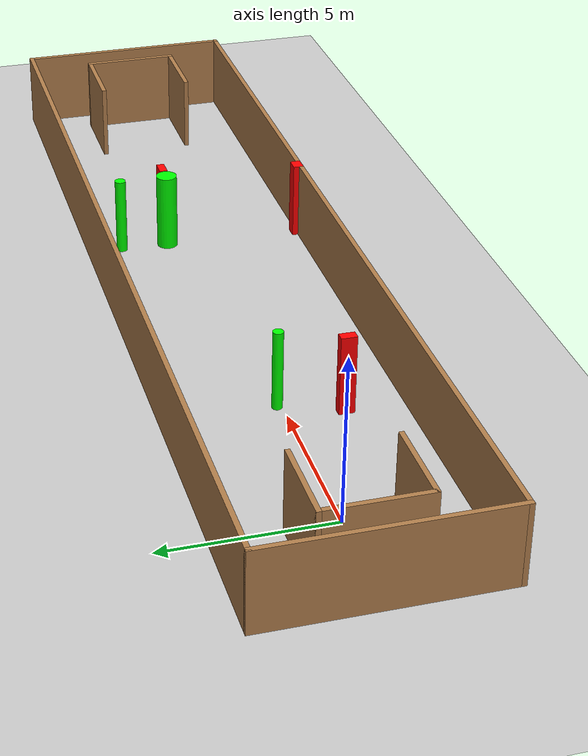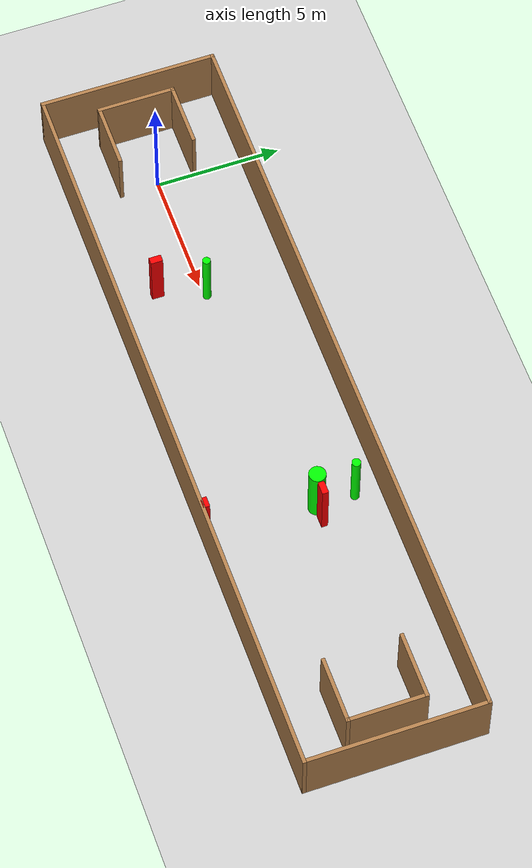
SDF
<sdf version="1.7">
 <world name="default">
  <light name="sun" type="directional">
   <pose>0 0 10 0 -0 0</pose>
   <diffuse>0.8 0.8 0.8 1</diffuse>
   <specular>0.2 0.2 0.2 1</specular>
   <attenuation>
    <range>1000</range>
    <constant>0.9</constant>
    <linear>0.01</linear>
    <quadratic>0.001</quadratic>
   </attenuation>
   <direction>-0.5 0.1 -0.9</direction>
   <spot><inner_angle>0</inner_angle><outer_angle>0</outer_angle><falloff>0</falloff></spot>
  </light>
  <model name="ground_plane">
   <static>1</static>
   <link name="link">
    <collision name="collision">
     <geometry><plane><normal>0 0 1</normal><size>100 100</size></plane></geometry>
     <surface>
      <contact><collide_bitmask>65535</collide_bitmask></contact>
      <friction><ode><mu>100</mu><mu2>50</mu2></ode></friction>
     </surface>
    </collision>
    <visual name="visual">
     <cast_shadows>0</cast_shadows>
     <geometry><plane><normal>0 0 1</normal><size>100 100</size></plane></geometry>
     <material>
      <script><uri>file://media/materials/scripts/gazebo.material</uri><name>Gazebo/Grey</name></script>
     </material>
    </visual>
   </link>
  </model>
  <gravity>0 0 -9.8</gravity>
  <magnetic_field>6e-06 2.3e-05 -4.2e-05</magnetic_field>
  <atmosphere type="adiabatic"/>
  <physics type="ode">
   <max_step_size>0.001</max_step_size>
   <real_time_factor>1</real_time_factor>
   <real_time_update_rate>1000</real_time_update_rate>
  </physics>
  <scene><ambient>0.4 0.4 0.4 1</ambient><background>0.7 0.7 0.7 1</background><shadows>1</shadows></scene>
  <spherical_coordinates>
   <surface_model>EARTH_WGS84</surface_model>
   <latitude_deg>0</latitude_deg>
   <longitude_deg>0</longitude_deg>
   <elevation>0</elevation>
   <heading_deg>0</heading_deg>
  </spherical_coordinates>
  <model name="my_base_walls">
   <link name="Wall_0">
    <collision name="Wall_0_Collision">
     <geometry><box><size>7.15 0.15 2.5</size></box></geometry>
     <pose>0 0 1.25 0 -0 0</pose>
    </collision>
    <visual name="Wall_0_Visual">
     <pose>0 0 1.25 0 -0 0</pose>
     <geometry><box><size>7.15 0.15 2.5</size></box></geometry>
     <material>
      <script><uri>file://media/materials/scripts/gazebo.material</uri><name>Gazebo/Wood</name></script>
      <ambient>1 1 1 1</ambient>
     </material>
     <meta><layer>0</layer></meta>
    </visual>
    <pose>-15 0 0 0 -0 1.5708</pose>
   </link>
   <link name="Wall_10">
    <collision name="Wall_10_Collision">
     <geometry><box><size>2.65 0.15 2.5</size></box></geometry>
     <pose>0 0 1.25 0 -0 0</pose>
    </collision>
    <visual name="Wall_10_Visual">
     <pose>0 0 1.25 0 -0 0</pose>
     <geometry><box><size>2.65 0.15 2.5</size></box></geometry>
     <material>
      <script><uri>file://media/materials/scripts/gazebo.material</uri><name>Gazebo/Wood</name></script>
      <ambient>1 1 1 1</ambient>
     </material>
     <meta><layer>0</layer></meta>
    </visual>
    <pose>-12.75 -1.5 0 0 -0 0</pose>
   </link>
   <link name="Wall_12">
    <collision name="Wall_12_Collision">
     <geometry><box><size>2.65 0.15 2.5</size></box></geometry>
     <pose>0 0 1.25 0 -0 0</pose>
    </collision>
    <visual name="Wall_12_Visual">
     <pose>0 0 1.25 0 -0 0</pose>
     <geometry><box><size>2.65 0.15 2.5</size></box></geometry>
     <material>
      <script><uri>file://media/materials/scripts/gazebo.material</uri><name>Gazebo/Wood</name></script>
      <ambient>1 1 1 1</ambient>
     </material>
     <meta><layer>0</layer></meta>
    </visual>
    <pose>-12.75 1.5 0 0 -0 0</pose>
   </link>
   <link name="Wall_14">
    <collision name="Wall_14_Collision">
     <geometry><box><size>3.15 0.15 2.5</size></box></geometry>
     <pose>0 0 1.25 0 -0 0</pose>
    </collision>
    <visual name="Wall_14_Visual">
     <pose>0 0 1.25 0 -0 0</pose>
     <geometry><box><size>3.15 0.15 2.5</size></box></geometry>
     <material>
      <script><uri>file://media/materials/scripts/gazebo.material</uri><name>Gazebo/Wood</name></script>
      <ambient>1 1 1 1</ambient>
     </material>
     <meta><layer>0</layer></meta>
    </visual>
    <pose>14 0 0 0 -0 -1.5708</pose>
   </link>
   <link name="Wall_15">
    <collision name="Wall_15_Collision">
     <geometry><box><size>2.65 0.15 2.5</size></box></geometry>
     <pose>0 0 1.25 0 -0 0</pose>
    </collision>
    <visual name="Wall_15_Visual">
     <pose>0 0 1.25 0 -0 0</pose>
     <geometry><box><size>2.65 0.15 2.5</size></box></geometry>
     <material>
      <script><uri>file://media/materials/scripts/gazebo.material</uri><name>Gazebo/Wood</name></script>
      <ambient>1 1 1 1</ambient>
     </material>
     <meta><layer>0</layer></meta>
    </visual>
    <pose>12.75 -1.5 0 0 -0 3.14159</pose>
   </link>
   <link name="Wall_17">
    <collision name="Wall_17_Collision">
     <geometry><box><size>2.65 0.15 2.5</size></box></geometry>
     <pose>0 0 1.25 0 -0 0</pose>
    </collision>
    <visual name="Wall_17_Visual">
     <pose>0 0 1.25 0 -0 0</pose>
     <geometry><box><size>2.65 0.15 2.5</size></box></geometry>
     <material>
      <script><uri>file://media/materials/scripts/gazebo.material</uri><name>Gazebo/Wood</name></script>
      <ambient>1 1 1 1</ambient>
     </material>
     <meta><layer>0</layer></meta>
    </visual>
    <pose>12.75 1.5 0 0 -0 3.14159</pose>
   </link>
   <link name="Wall_2">
    <collision name="Wall_2_Collision">
     <geometry><box><size>30.15 0.15 2.5</size></box></geometry>
     <pose>0 0 1.25 0 -0 0</pose>
    </collision>
    <visual name="Wall_2_Visual">
     <pose>0 0 1.25 0 -0 0</pose>
     <geometry><box><size>30.15 0.15 2.5</size></box></geometry>
     <material>
      <script><uri>file://media/materials/scripts/gazebo.material</uri><name>Gazebo/Wood</name></script>
      <ambient>1 1 1 1</ambient>
     </material>
     <meta><layer>0</layer></meta>
    </visual>
    <pose>-0 -3.5 0 0 -0 0</pose>
   </link>
   <link name="Wall_4">
    <collision name="Wall_4_Collision">
     <geometry><box><size>30.15 0.15 2.5</size></box></geometry>
     <pose>0 0 1.25 0 -0 0</pose>
    </collision>
    <visual name="Wall_4_Visual">
     <pose>0 0 1.25 0 -0 0</pose>
     <geometry><box><size>30.15 0.15 2.5</size></box></geometry>
     <material>
      <script><uri>file://media/materials/scripts/gazebo.material</uri><name>Gazebo/Wood</name></script>
      <ambient>1 1 1 1</ambient>
     </material>
     <meta><layer>0</layer></meta>
    </visual>
    <pose>-0 3.5 0 0 -0 0</pose>
   </link>
   <link name="Wall_6">
    <collision name="Wall_6_Collision">
     <geometry><box><size>7.15 0.15 2.5</size></box></geometry>
     <pose>0 0 1.25 0 -0 0</pose>
    </collision>
    <visual name="Wall_6_Visual">
     <pose>0 0 1.25 0 -0 0</pose>
     <geometry><box><size>7.15 0.15 2.5</size></box></geometry>
     <material>
      <script><uri>file://media/materials/scripts/gazebo.material</uri><name>Gazebo/Wood</name></script>
      <ambient>1 1 1 1</ambient>
     </material>
     <meta><layer>0</layer></meta>
    </visual>
    <pose>15 0 0 0 -0 -1.5708</pose>
   </link>
   <link name="Wall_9">
    <collision name="Wall_9_Collision">
     <geometry><box><size>3.15 0.15 2.5</size></box></geometry>
     <pose>0 0 1.25 0 -0 0</pose>
    </collision>
    <visual name="Wall_9_Visual">
     <pose>0 0 1.25 0 -0 0</pose>
     <geometry><box><size>3.15 0.15 2.5</size></box></geometry>
     <material>
      <script><uri>file://media/materials/scripts/gazebo.material</uri><name>Gazebo/Wood</name></script>
      <ambient>1 1 1 1</ambient>
     </material>
     <meta><layer>0</layer></meta>
    </visual>
    <pose>-14 0 0 0 -0 -1.5708</pose>
   </link>
   <static>1</static>
   <pose>11.5 0 0 0 -0 0</pose>
  </model>
  <model name="cylinder1">
   <static>1</static>
   <link name="link">
    <inertial>
     <mass>1</mass>
     <inertia><ixx>0.5</ixx><ixy>0</ixy><ixz>0</ixz><iyy>0.5</iyy><iyz>0</iyz><izz>1</izz></inertia>
    </inertial>
    <collision name="collision">
     <geometry><cylinder><radius>0.17238429049111553</radius><length>2.5</length></cylinder></geometry>
    </collision>
    <visual name="visual">
     <geometry><cylinder><radius>0.17238429049111553</radius><length>2.5</length></cylinder></geometry>
     <material>
      <ambient>0 1 0 1</ambient>
      <diffuse>0 1 0 1</diffuse>
      <specular>0.1 0.1 0.1 1</specular>
      <emissive>0 0 0 0</emissive>
     </material>
    </visual>
   </link>
   <pose>15.74538125357043 2.435503519911693 1.25 0 0 0</pose>
  </model>
  <model name="cylinder2">
   <static>1</static>
   <link name="link">
    <inertial>
     <mass>1</mass>
     <inertia><ixx>0.5</ixx><ixy>0</ixy><ixz>0</ixz><iyy>0.5</iyy><iyz>0</iyz><izz>1</izz></inertia>
    </inertial>
    <collision name="collision">
     <geometry><cylinder><radius>0.33005164283892474</radius><length>2.5</length></cylinder></geometry>
    </collision>
    <visual name="visual">
     <geometry><cylinder><radius>0.33005164283892474</radius><length>2.5</length></cylinder></geometry>
     <material>
      <ambient>0 1 0 1</ambient>
      <diffuse>0 1 0 1</diffuse>
      <specular>0.1 0.1 0.1 1</specular>
      <emissive>0 0 0 0</emissive>
     </material>
    </visual>
   </link>
   <pose>15.727102353408855 0.9146271433575404 1.25 0 0 0</pose>
  </model>
  <model name="cylinder3">
   <static>1</static>
   <link name="link">
    <inertial>
     <mass>1</mass>
     <inertia><ixx>0.5</ixx><ixy>0</ixy><ixz>0</ixz><iyy>0.5</iyy><iyz>0</iyz><izz>1</izz></inertia>
    </inertial>
    <collision name="collision">
     <geometry><cylinder><radius>0.15824540676478763</radius><length>2.5</length></cylinder></geometry>
    </collision>
    <visual name="visual">
     <geometry><cylinder><radius>0.15824540676478763</radius><length>2.5</length></cylinder></geometry>
     <material>
      <ambient>0 1 0 1</ambient>
      <diffuse>0 1 0 1</diffuse>
      <specular>0.1 0.1 0.1 1</specular>
      <emissive>0 0 0 0</emissive>
     </material>
    </visual>
   </link>
   <pose>5.525458837494016 0.13514714378770165 1.25 0 0 0</pose>
  </model>
  <model name="box1">
   <static>1</static>
   <link name="link">
    <inertial>
     <mass>1</mass>
     <inertia><ixx>0.083</ixx><ixy>0</ixy><ixz>0</ixz><iyy>0.083</iyy><iyz>0</iyz><izz>0.083</izz></inertia>
    </inertial>
    <collision name="collision">
     <geometry><box><size>0.4224098568953899 0.32399069963707317 2.5</size></box></geometry>
    </collision>
    <visual name="visual">
     <geometry><box><size>0.4224098568953899 0.32399069963707317 2.5</size></box></geometry>
     <material>
      <ambient>1 0 0 1</ambient>
      <diffuse>1 0 0 1</diffuse>
      <specular>0.1 0.1 0.1 1</specular>
      <emissive>0 0 0 0</emissive>
     </material>
    </visual>
    <sensor name="my_contact" type="contact">
     <contact><collision>box_collision</collision><topic>__default_topic__</topic></contact>
    </sensor>
   </link>
   <pose>15.476532169423436 -3.406991295814903 1.25 0 0 0</pose>
  </model>
  <model name="box2">
   <static>1</static>
   <link name="link">
    <inertial>
     <mass>1</mass>
     <inertia><ixx>0.083</ixx><ixy>0</ixy><ixz>0</ixz><iyy>0.083</iyy><iyz>0</iyz><izz>0.083</izz></inertia>
    </inertial>
    <collision name="collision">
     <geometry><box><size>0.507376642578351 0.2520986645579931 2.5</size></box></geometry>
    </collision>
    <visual name="visual">
     <geometry><box><size>0.507376642578351 0.2520986645579931 2.5</size></box></geometry>
     <material>
      <ambient>1 0 0 1</ambient>
      <diffuse>1 0 0 1</diffuse>
      <specular>0.1 0.1 0.1 1</specular>
      <emissive>0 0 0 0</emissive>
     </material>
    </visual>
    <sensor name="my_contact" type="contact">
     <contact><collision>box_collision</collision><topic>__default_topic__</topic></contact>
    </sensor>
   </link>
   <pose>16.341086374218722 0.923523747650659 1.25 0 0 0</pose>
  </model>
  <model name="box3">
   <static>1</static>
   <link name="link">
    <inertial>
     <mass>1</mass>
     <inertia><ixx>0.083</ixx><ixy>0</ixy><ixz>0</ixz><iyy>0.083</iyy><iyz>0</iyz><izz>0.083</izz></inertia>
    </inertial>
    <collision name="collision">
     <geometry><box><size>0.27878471232479907 0.4794152434657871 2.5</size></box></geometry>
    </collision>
    <visual name="visual">
     <geometry><box><size>0.27878471232479907 0.4794152434657871 2.5</size></box></geometry>
     <material>
      <ambient>1 0 0 1</ambient>
      <diffuse>1 0 0 1</diffuse>
      <specular>0.1 0.1 0.1 1</specular>
      <emissive>0 0 0 0</emissive>
     </material>
    </visual>
    <sensor name="my_contact" type="contact">
     <contact><collision>box_collision</collision><topic>__default_topic__</topic></contact>
    </sensor>
   </link>
   <pose>4.835192901528801 -1.664702953481451 1.25 0 0 0</pose>
  </model>
 </world>
</sdf>
